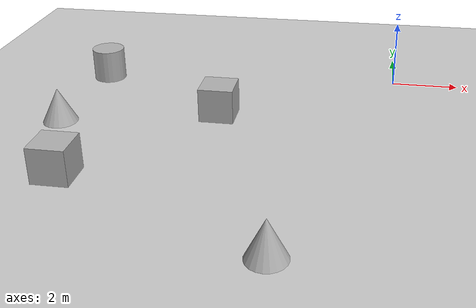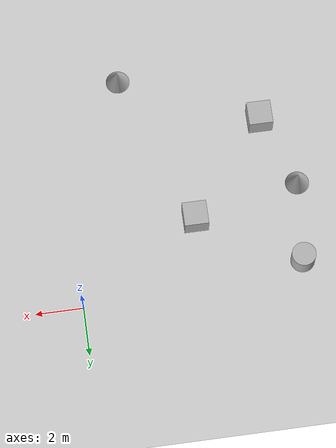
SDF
<sdf version="1.10">
 <world name="ackermann_steering">
  <model name="ground_plane">
   <static>true</static>
   <link name="link">
    <collision name="collision">
     <geometry><plane><normal>0 0 1</normal><size>100 100</size></plane></geometry>
     <surface>
      <friction>
       <ode><mu>50</mu></ode>
       <bullet><friction>1</friction><rolling_friction>0.10000000000000001</rolling_friction></bullet>
      </friction>
     </surface>
    </collision>
    <visual name="visual">
     <geometry><plane><normal>0 0 1</normal><size>100 100</size></plane></geometry>
     <material>
      <ambient>0.800000012 0.800000012 0.800000012 1</ambient>
      <diffuse>0.800000012 0.800000012 0.800000012 1</diffuse>
      <specular>0.800000012 0.800000012 0.800000012 1</specular>
     </material>
    </visual>
    <inertial>
     <mass>1</mass>
     <inertia><ixx>1</ixx><ixy>0</ixy><ixz>0</ixz><iyy>1</iyy><iyz>0</iyz><izz>1</izz></inertia>
    </inertial>
   </link>
  </model>
  <model name="cylinder_2">
   <pose>-9.2002132375437142 -0.80755781326954579 0.5 0 0 0</pose>
   <link name="cylinder_link">
    <inertial>
     <inertia>
      <ixx>0.14580000000000001</ixx>
      <ixy>0</ixy>
      <ixz>0</ixz>
      <iyy>0.14580000000000001</iyy>
      <iyz>0</iyz>
      <izz>0.125</izz>
     </inertia>
     <mass>1</mass>
    </inertial>
    <collision name="cylinder_collision">
     <geometry><cylinder><radius>0.5</radius><length>1</length></cylinder></geometry>
    </collision>
    <visual name="cylinder_visual">
     <geometry><cylinder><radius>0.5</radius><length>1</length></cylinder></geometry>
     <material>
      <ambient>0.300000012 0.300000012 0.300000012 1</ambient>
      <diffuse>0.699999988 0.699999988 0.699999988 1</diffuse>
      <specular>1 1 1 1</specular>
     </material>
    </visual>
   </link>
   <static>false</static>
  </model>
  <model name="cone_2">
   <pose>-9.4957782171689864 -4.1819928076301416 0.5 0 0 0</pose>
   <link name="cone_link">
    <inertial>
     <inertia>
      <ixx>0.074999999999999997</ixx>
      <ixy>0</ixy>
      <ixz>0</ixz>
      <iyy>0.074999999999999997</iyy>
      <iyz>0</iyz>
      <izz>0.074999999999999997</izz>
     </inertia>
     <mass>1</mass>
    </inertial>
    <collision name="cone_collision">
     <geometry><cone><radius>0.5</radius><length>1</length></cone></geometry>
    </collision>
    <visual name="cone_visual">
     <geometry><cone><radius>0.5</radius><length>1</length></cone></geometry>
     <material>
      <ambient>0.300000012 0.300000012 0.300000012 1</ambient>
      <diffuse>0.699999988 0.699999988 0.699999988 1</diffuse>
      <specular>1 1 1 1</specular>
     </material>
    </visual>
   </link>
   <static>false</static>
  </model>
  <model name="box_3">
   <pose>-8.3210632982018389 -7.153501650496465 0.5 0 0 0</pose>
   <link name="box_link">
    <inertial>
     <inertia><ixx>0.16666</ixx><ixy>0</ixy><ixz>0</ixz><iyy>0.16666</iyy><iyz>0</iyz><izz>0.16666</izz></inertia>
     <mass>1</mass>
    </inertial>
    <collision name="box_collision"><geometry><box><size>1 1 1</size></box></geometry></collision>
    <visual name="box_visual">
     <geometry><box><size>1 1 1</size></box></geometry>
     <material>
      <ambient>0.300000012 0.300000012 0.300000012 1</ambient>
      <diffuse>0.699999988 0.699999988 0.699999988 1</diffuse>
      <specular>1 1 1 1</specular>
     </material>
    </visual>
   </link>
   <static>false</static>
  </model>
  <model name="cone_3">
   <pose>-2.6297435275863723 -9.679333851798555 0.5 0 0 0</pose>
   <link name="cone_link">
    <inertial>
     <inertia>
      <ixx>0.074999999999999997</ixx>
      <ixy>0</ixy>
      <ixz>0</ixz>
      <iyy>0.074999999999999997</iyy>
      <iyz>0</iyz>
      <izz>0.074999999999999997</izz>
     </inertia>
     <mass>1</mass>
    </inertial>
    <collision name="cone_collision">
     <geometry><cone><radius>0.5</radius><length>1</length></cone></geometry>
    </collision>
    <visual name="cone_visual">
     <geometry><cone><radius>0.5</radius><length>1</length></cone></geometry>
     <material>
      <ambient>0.300000012 0.300000012 0.300000012 1</ambient>
      <diffuse>0.699999988 0.699999988 0.699999988 1</diffuse>
      <specular>1 1 1 1</specular>
     </material>
    </visual>
   </link>
   <static>false</static>
  </model>
  <model name="box_5">
   <pose>-5.0433169154844908 -3.1400976801365936 0.5 0 0 0</pose>
   <link name="box_link">
    <inertial>
     <inertia><ixx>0.16666</ixx><ixy>0</ixy><ixz>0</ixz><iyy>0.16666</iyy><iyz>0</iyz><izz>0.16666</izz></inertia>
     <mass>1</mass>
    </inertial>
    <collision name="box_collision"><geometry><box><size>1 1 1</size></box></geometry></collision>
    <visual name="box_visual">
     <geometry><box><size>1 1 1</size></box></geometry>
     <material>
      <ambient>0.300000012 0.300000012 0.300000012 1</ambient>
      <diffuse>0.699999988 0.699999988 0.699999988 1</diffuse>
      <specular>1 1 1 1</specular>
     </material>
    </visual>
   </link>
   <static>false</static>
  </model>
 </world>
</sdf>
